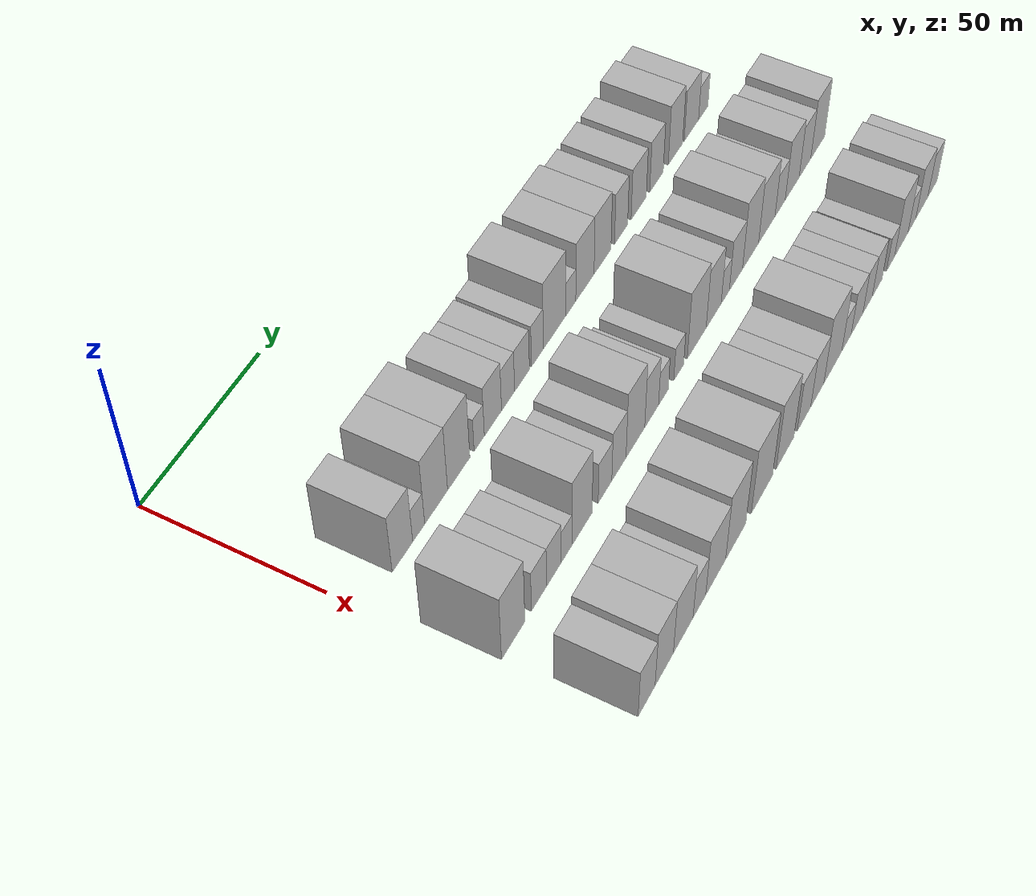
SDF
<sdf version="1.6">
 <world name="default">
  <model name="building_40">
   <static>1</static>
   <pose>50.0000 15.7462 0 0.000000 0.000000 0.000000</pose>
   <link name="link">
    <pose>0 0 10.50 0 0 0</pose>
    <collision name="collision"><geometry><box><size>20.0000 9.0283 21.0000</size></box></geometry></collision>
    <visual name="visual">
     <cast_shadows>0</cast_shadows>
     <geometry><box><size>20.0000 9.0283 21.0000</size></box></geometry>
     <material>
      <script>
       <uri>model://HANNAS_wall/materials/scripts</uri>
       <uri>model://HANNAS_wall/materials/textures</uri>
       <name>vrc/HANNAS_wall</name>
      </script>
     </material>
    </visual>
   </link>
  </model>
  <model name="building_41">
   <static>1</static>
   <pose>50.0000 22.9326 0 0.000000 0.000000 0.000000</pose>
   <link name="link">
    <pose>0 0 6.00 0 0 0</pose>
    <collision name="collision"><geometry><box><size>20.0000 5.3446 12.0000</size></box></geometry></collision>
    <visual name="visual">
     <cast_shadows>0</cast_shadows>
     <geometry><box><size>20.0000 5.3446 12.0000</size></box></geometry>
     <material>
      <script>
       <uri>model://HANNAS_wall/materials/scripts</uri>
       <uri>model://HANNAS_wall/materials/textures</uri>
       <name>vrc/HANNAS_wall</name>
      </script>
     </material>
    </visual>
   </link>
  </model>
  <model name="building_42">
   <static>1</static>
   <pose>50.0000 30.8169 0 0.000000 0.000000 0.000000</pose>
   <link name="link">
    <pose>0 0 12.00 0 0 0</pose>
    <collision name="collision"><geometry><box><size>20.0000 10.4240 24.0000</size></box></geometry></collision>
    <visual name="visual">
     <cast_shadows>0</cast_shadows>
     <geometry><box><size>20.0000 10.4240 24.0000</size></box></geometry>
     <material>
      <script>
       <uri>model://HANNAS_wall/materials/scripts</uri>
       <uri>model://HANNAS_wall/materials/textures</uri>
       <name>vrc/HANNAS_wall</name>
      </script>
     </material>
    </visual>
   </link>
  </model>
  <model name="building_43">
   <static>1</static>
   <pose>50.0000 41.2329 0 0.000000 0.000000 0.000000</pose>
   <link name="link">
    <pose>0 0 12.00 0 0 0</pose>
    <collision name="collision"><geometry><box><size>20.0000 10.4081 24.0000</size></box></geometry></collision>
    <visual name="visual">
     <cast_shadows>0</cast_shadows>
     <geometry><box><size>20.0000 10.4081 24.0000</size></box></geometry>
     <material>
      <script>
       <uri>model://HANNAS_wall/materials/scripts</uri>
       <uri>model://HANNAS_wall/materials/textures</uri>
       <name>vrc/HANNAS_wall</name>
      </script>
     </material>
    </visual>
   </link>
  </model>
  <model name="building_44">
   <static>1</static>
   <pose>50.0000 50.8901 0 0.000000 0.000000 0.000000</pose>
   <link name="link">
    <pose>0 0 6.00 0 0 0</pose>
    <collision name="collision"><geometry><box><size>20.0000 4.9063 12.0000</size></box></geometry></collision>
    <visual name="visual">
     <cast_shadows>0</cast_shadows>
     <geometry><box><size>20.0000 4.9063 12.0000</size></box></geometry>
     <material>
      <script>
       <uri>model://HANNAS_wall/materials/scripts</uri>
       <uri>model://HANNAS_wall/materials/textures</uri>
       <name>vrc/HANNAS_wall</name>
      </script>
     </material>
    </visual>
   </link>
  </model>
  <model name="building_45">
   <static>1</static>
   <pose>50.0000 57.5141 0 0.000000 0.000000 0.000000</pose>
   <link name="link">
    <pose>0 0 9.00 0 0 0</pose>
    <collision name="collision"><geometry><box><size>20.0000 8.3417 18.0000</size></box></geometry></collision>
    <visual name="visual">
     <cast_shadows>0</cast_shadows>
     <geometry><box><size>20.0000 8.3417 18.0000</size></box></geometry>
     <material>
      <script>
       <uri>model://HANNAS_wall/materials/scripts</uri>
       <uri>model://HANNAS_wall/materials/textures</uri>
       <name>vrc/HANNAS_wall</name>
      </script>
     </material>
    </visual>
   </link>
  </model>
  <model name="building_46">
   <static>1</static>
   <pose>50.0000 64.9036 0 0.000000 0.000000 0.000000</pose>
   <link name="link">
    <pose>0 0 7.50 0 0 0</pose>
    <collision name="collision"><geometry><box><size>20.0000 6.4373 15.0000</size></box></geometry></collision>
    <visual name="visual">
     <cast_shadows>0</cast_shadows>
     <geometry><box><size>20.0000 6.4373 15.0000</size></box></geometry>
     <material>
      <script>
       <uri>model://HANNAS_wall/materials/scripts</uri>
       <uri>model://HANNAS_wall/materials/textures</uri>
       <name>vrc/HANNAS_wall</name>
      </script>
     </material>
    </visual>
   </link>
  </model>
  <model name="building_47">
   <static>1</static>
   <pose>50.0000 71.8408 0 0.000000 0.000000 0.000000</pose>
   <link name="link">
    <pose>0 0 7.50 0 0 0</pose>
    <collision name="collision"><geometry><box><size>20.0000 7.4370 15.0000</size></box></geometry></collision>
    <visual name="visual">
     <cast_shadows>0</cast_shadows>
     <geometry><box><size>20.0000 7.4370 15.0000</size></box></geometry>
     <material>
      <script>
       <uri>model://HANNAS_wall/materials/scripts</uri>
       <uri>model://HANNAS_wall/materials/textures</uri>
       <name>vrc/HANNAS_wall</name>
      </script>
     </material>
    </visual>
   </link>
  </model>
  <model name="building_48">
   <static>1</static>
   <pose>50.0000 79.6074 0 0.000000 0.000000 0.000000</pose>
   <link name="link">
    <pose>0 0 7.50 0 0 0</pose>
    <collision name="collision"><geometry><box><size>20.0000 6.0962 15.0000</size></box></geometry></collision>
    <visual name="visual">
     <cast_shadows>0</cast_shadows>
     <geometry><box><size>20.0000 6.0962 15.0000</size></box></geometry>
     <material>
      <script>
       <uri>model://HANNAS_wall/materials/scripts</uri>
       <uri>model://HANNAS_wall/materials/textures</uri>
       <name>vrc/HANNAS_wall</name>
      </script>
     </material>
    </visual>
   </link>
  </model>
  <model name="building_49">
   <static>1</static>
   <pose>50.0000 88.5167 0 0.000000 0.000000 0.000000</pose>
   <link name="link">
    <pose>0 0 12.00 0 0 0</pose>
    <collision name="collision"><geometry><box><size>20.0000 11.7224 24.0000</size></box></geometry></collision>
    <visual name="visual">
     <cast_shadows>0</cast_shadows>
     <geometry><box><size>20.0000 11.7224 24.0000</size></box></geometry>
     <material>
      <script>
       <uri>model://HANNAS_wall/materials/scripts</uri>
       <uri>model://HANNAS_wall/materials/textures</uri>
       <name>vrc/HANNAS_wall</name>
      </script>
     </material>
    </visual>
   </link>
  </model>
  <model name="building_50">
   <static>1</static>
   <pose>50.0000 97.0144 0 0.000000 0.000000 0.000000</pose>
   <link name="link">
    <pose>0 0 6.00 0 0 0</pose>
    <collision name="collision"><geometry><box><size>20.0000 5.2729 12.0000</size></box></geometry></collision>
    <visual name="visual">
     <cast_shadows>0</cast_shadows>
     <geometry><box><size>20.0000 5.2729 12.0000</size></box></geometry>
     <material>
      <script>
       <uri>model://HANNAS_wall/materials/scripts</uri>
       <uri>model://HANNAS_wall/materials/textures</uri>
       <name>vrc/HANNAS_wall</name>
      </script>
     </material>
    </visual>
   </link>
  </model>
  <model name="building_51">
   <static>1</static>
   <pose>50.0000 104.5965 0 0.000000 0.000000 0.000000</pose>
   <link name="link">
    <pose>0 0 10.50 0 0 0</pose>
    <collision name="collision"><geometry><box><size>20.0000 9.8914 21.0000</size></box></geometry></collision>
    <visual name="visual">
     <cast_shadows>0</cast_shadows>
     <geometry><box><size>20.0000 9.8914 21.0000</size></box></geometry>
     <material>
      <script>
       <uri>model://HANNAS_wall/materials/scripts</uri>
       <uri>model://HANNAS_wall/materials/textures</uri>
       <name>vrc/HANNAS_wall</name>
      </script>
     </material>
    </visual>
   </link>
  </model>
  <model name="building_52">
   <static>1</static>
   <pose>50.0000 114.2003 0 0.000000 0.000000 0.000000</pose>
   <link name="link">
    <pose>0 0 10.50 0 0 0</pose>
    <collision name="collision"><geometry><box><size>20.0000 9.3162 21.0000</size></box></geometry></collision>
    <visual name="visual">
     <cast_shadows>0</cast_shadows>
     <geometry><box><size>20.0000 9.3162 21.0000</size></box></geometry>
     <material>
      <script>
       <uri>model://HANNAS_wall/materials/scripts</uri>
       <uri>model://HANNAS_wall/materials/textures</uri>
       <name>vrc/HANNAS_wall</name>
      </script>
     </material>
    </visual>
   </link>
  </model>
  <model name="building_53">
   <static>1</static>
   <pose>50.0000 124.5587 0 0.000000 0.000000 0.000000</pose>
   <link name="link">
    <pose>0 0 9.00 0 0 0</pose>
    <collision name="collision"><geometry><box><size>20.0000 7.4005 18.0000</size></box></geometry></collision>
    <visual name="visual">
     <cast_shadows>0</cast_shadows>
     <geometry><box><size>20.0000 7.4005 18.0000</size></box></geometry>
     <material>
      <script>
       <uri>model://HANNAS_wall/materials/scripts</uri>
       <uri>model://HANNAS_wall/materials/textures</uri>
       <name>vrc/HANNAS_wall</name>
      </script>
     </material>
    </visual>
   </link>
  </model>
  <model name="building_54">
   <static>1</static>
   <pose>50.0000 134.6255 0 0.000000 0.000000 0.000000</pose>
   <link name="link">
    <pose>0 0 9.00 0 0 0</pose>
    <collision name="collision"><geometry><box><size>20.0000 8.7331 18.0000</size></box></geometry></collision>
    <visual name="visual">
     <cast_shadows>0</cast_shadows>
     <geometry><box><size>20.0000 8.7331 18.0000</size></box></geometry>
     <material>
      <script>
       <uri>model://HANNAS_wall/materials/scripts</uri>
       <uri>model://HANNAS_wall/materials/textures</uri>
       <name>vrc/HANNAS_wall</name>
      </script>
     </material>
    </visual>
   </link>
  </model>
  <model name="building_55">
   <static>1</static>
   <pose>50.0000 144.9846 0 0.000000 0.000000 0.000000</pose>
   <link name="link">
    <pose>0 0 9.00 0 0 0</pose>
    <collision name="collision"><geometry><box><size>20.0000 7.9852 18.0000</size></box></geometry></collision>
    <visual name="visual">
     <cast_shadows>0</cast_shadows>
     <geometry><box><size>20.0000 7.9852 18.0000</size></box></geometry>
     <material>
      <script>
       <uri>model://HANNAS_wall/materials/scripts</uri>
       <uri>model://HANNAS_wall/materials/textures</uri>
       <name>vrc/HANNAS_wall</name>
      </script>
     </material>
    </visual>
   </link>
  </model>
  <model name="building_56">
   <static>1</static>
   <pose>50.0000 156.3206 0 0.000000 0.000000 0.000000</pose>
   <link name="link">
    <pose>0 0 10.50 0 0 0</pose>
    <collision name="collision"><geometry><box><size>20.0000 8.6868 21.0000</size></box></geometry></collision>
    <visual name="visual">
     <cast_shadows>0</cast_shadows>
     <geometry><box><size>20.0000 8.6868 21.0000</size></box></geometry>
     <material>
      <script>
       <uri>model://HANNAS_wall/materials/scripts</uri>
       <uri>model://HANNAS_wall/materials/textures</uri>
       <name>vrc/HANNAS_wall</name>
      </script>
     </material>
    </visual>
   </link>
  </model>
  <model name="building_57">
   <static>1</static>
   <pose>50.0000 166.0911 0 0.000000 0.000000 0.000000</pose>
   <link name="link">
    <pose>0 0 9.00 0 0 0</pose>
    <collision name="collision"><geometry><box><size>20.0000 8.8542 18.0000</size></box></geometry></collision>
    <visual name="visual">
     <cast_shadows>0</cast_shadows>
     <geometry><box><size>20.0000 8.8542 18.0000</size></box></geometry>
     <material>
      <script>
       <uri>model://HANNAS_wall/materials/scripts</uri>
       <uri>model://HANNAS_wall/materials/textures</uri>
       <name>vrc/HANNAS_wall</name>
      </script>
     </material>
    </visual>
   </link>
  </model>
  <model name="building_58">
   <static>1</static>
   <pose>50.0000 173.4508 0 0.000000 0.000000 0.000000</pose>
   <link name="link">
    <pose>0 0 6.00 0 0 0</pose>
    <collision name="collision"><geometry><box><size>20.0000 5.8651 12.0000</size></box></geometry></collision>
    <visual name="visual">
     <cast_shadows>0</cast_shadows>
     <geometry><box><size>20.0000 5.8651 12.0000</size></box></geometry>
     <material>
      <script>
       <uri>model://HANNAS_wall/materials/scripts</uri>
       <uri>model://HANNAS_wall/materials/textures</uri>
       <name>vrc/HANNAS_wall</name>
      </script>
     </material>
    </visual>
   </link>
  </model>
  <model name="building_117">
   <static>1</static>
   <pose>82.0000 8.3578 0 0.000000 0.000000 0.000000</pose>
   <link name="link">
    <pose>0 0 12.00 0 0 0</pose>
    <collision name="collision"><geometry><box><size>20.0000 10.6101 24.0000</size></box></geometry></collision>
    <visual name="visual">
     <cast_shadows>0</cast_shadows>
     <geometry><box><size>20.0000 10.6101 24.0000</size></box></geometry>
     <material>
      <script>
       <uri>model://HANNAS_wall/materials/scripts</uri>
       <uri>model://HANNAS_wall/materials/textures</uri>
       <name>vrc/HANNAS_wall</name>
      </script>
     </material>
    </visual>
   </link>
  </model>
  <model name="building_118">
   <static>1</static>
   <pose>82.0000 20.1882 0 0.000000 0.000000 0.000000</pose>
   <link name="link">
    <pose>0 0 7.50 0 0 0</pose>
    <collision name="collision"><geometry><box><size>20.0000 7.0508 15.0000</size></box></geometry></collision>
    <visual name="visual">
     <cast_shadows>0</cast_shadows>
     <geometry><box><size>20.0000 7.0508 15.0000</size></box></geometry>
     <material>
      <script>
       <uri>model://HANNAS_wall/materials/scripts</uri>
       <uri>model://HANNAS_wall/materials/textures</uri>
       <name>vrc/HANNAS_wall</name>
      </script>
     </material>
    </visual>
   </link>
  </model>
  <model name="building_119">
   <static>1</static>
   <pose>82.0000 27.2207 0 0.000000 0.000000 0.000000</pose>
   <link name="link">
    <pose>0 0 7.50 0 0 0</pose>
    <collision name="collision"><geometry><box><size>20.0000 7.0142 15.0000</size></box></geometry></collision>
    <visual name="visual">
     <cast_shadows>0</cast_shadows>
     <geometry><box><size>20.0000 7.0142 15.0000</size></box></geometry>
     <material>
      <script>
       <uri>model://HANNAS_wall/materials/scripts</uri>
       <uri>model://HANNAS_wall/materials/textures</uri>
       <name>vrc/HANNAS_wall</name>
      </script>
     </material>
    </visual>
   </link>
  </model>
  <model name="building_120">
   <static>1</static>
   <pose>82.0000 33.2956 0 0.000000 0.000000 0.000000</pose>
   <link name="link">
    <pose>0 0 6.00 0 0 0</pose>
    <collision name="collision"><geometry><box><size>20.0000 5.1355 12.0000</size></box></geometry></collision>
    <visual name="visual">
     <cast_shadows>0</cast_shadows>
     <geometry><box><size>20.0000 5.1355 12.0000</size></box></geometry>
     <material>
      <script>
       <uri>model://HANNAS_wall/materials/scripts</uri>
       <uri>model://HANNAS_wall/materials/textures</uri>
       <name>vrc/HANNAS_wall</name>
      </script>
     </material>
    </visual>
   </link>
  </model>
  <model name="building_121">
   <static>1</static>
   <pose>82.0000 40.8213 0 0.000000 0.000000 0.000000</pose>
   <link name="link">
    <pose>0 0 12.00 0 0 0</pose>
    <collision name="collision"><geometry><box><size>20.0000 9.9159 24.0000</size></box></geometry></collision>
    <visual name="visual">
     <cast_shadows>0</cast_shadows>
     <geometry><box><size>20.0000 9.9159 24.0000</size></box></geometry>
     <material>
      <script>
       <uri>model://HANNAS_wall/materials/scripts</uri>
       <uri>model://HANNAS_wall/materials/textures</uri>
       <name>vrc/HANNAS_wall</name>
      </script>
     </material>
    </visual>
   </link>
  </model>
  <model name="building_122">
   <static>1</static>
   <pose>82.0000 52.2259 0 0.000000 0.000000 0.000000</pose>
   <link name="link">
    <pose>0 0 7.50 0 0 0</pose>
    <collision name="collision"><geometry><box><size>20.0000 6.8932 15.0000</size></box></geometry></collision>
    <visual name="visual">
     <cast_shadows>0</cast_shadows>
     <geometry><box><size>20.0000 6.8932 15.0000</size></box></geometry>
     <material>
      <script>
       <uri>model://HANNAS_wall/materials/scripts</uri>
       <uri>model://HANNAS_wall/materials/textures</uri>
       <name>vrc/HANNAS_wall</name>
      </script>
     </material>
    </visual>
   </link>
  </model>
  <model name="building_123">
   <static>1</static>
   <pose>82.0000 59.3176 0 0.000000 0.000000 0.000000</pose>
   <link name="link">
    <pose>0 0 9.00 0 0 0</pose>
    <collision name="collision"><geometry><box><size>20.0000 7.2902 18.0000</size></box></geometry></collision>
    <visual name="visual">
     <cast_shadows>0</cast_shadows>
     <geometry><box><size>20.0000 7.2902 18.0000</size></box></geometry>
     <material>
      <script>
       <uri>model://HANNAS_wall/materials/scripts</uri>
       <uri>model://HANNAS_wall/materials/textures</uri>
       <name>vrc/HANNAS_wall</name>
      </script>
     </material>
    </visual>
   </link>
  </model>
  <model name="building_124">
   <static>1</static>
   <pose>82.0000 67.8774 0 0.000000 0.000000 0.000000</pose>
   <link name="link">
    <pose>0 0 12.00 0 0 0</pose>
    <collision name="collision"><geometry><box><size>20.0000 9.8295 24.0000</size></box></geometry></collision>
    <visual name="visual">
     <cast_shadows>0</cast_shadows>
     <geometry><box><size>20.0000 9.8295 24.0000</size></box></geometry>
     <material>
      <script>
       <uri>model://HANNAS_wall/materials/scripts</uri>
       <uri>model://HANNAS_wall/materials/textures</uri>
       <name>vrc/HANNAS_wall</name>
      </script>
     </material>
    </visual>
   </link>
  </model>
  <model name="building_125">
   <static>1</static>
   <pose>82.0000 76.4836 0 0.000000 0.000000 0.000000</pose>
   <link name="link">
    <pose>0 0 9.00 0 0 0</pose>
    <collision name="collision"><geometry><box><size>20.0000 7.3827 18.0000</size></box></geometry></collision>
    <visual name="visual">
     <cast_shadows>0</cast_shadows>
     <geometry><box><size>20.0000 7.3827 18.0000</size></box></geometry>
     <material>
      <script>
       <uri>model://HANNAS_wall/materials/scripts</uri>
       <uri>model://HANNAS_wall/materials/textures</uri>
       <name>vrc/HANNAS_wall</name>
      </script>
     </material>
    </visual>
   </link>
  </model>
  <model name="building_126">
   <static>1</static>
   <pose>82.0000 82.8270 0 0.000000 0.000000 0.000000</pose>
   <link name="link">
    <pose>0 0 6.00 0 0 0</pose>
    <collision name="collision"><geometry><box><size>20.0000 5.3042 12.0000</size></box></geometry></collision>
    <visual name="visual">
     <cast_shadows>0</cast_shadows>
     <geometry><box><size>20.0000 5.3042 12.0000</size></box></geometry>
     <material>
      <script>
       <uri>model://HANNAS_wall/materials/scripts</uri>
       <uri>model://HANNAS_wall/materials/textures</uri>
       <name>vrc/HANNAS_wall</name>
      </script>
     </material>
    </visual>
   </link>
  </model>
  <model name="building_127">
   <static>1</static>
   <pose>82.0000 91.2167 0 0.000000 0.000000 0.000000</pose>
   <link name="link">
    <pose>0 0 6.00 0 0 0</pose>
    <collision name="collision"><geometry><box><size>20.0000 5.4753 12.0000</size></box></geometry></collision>
    <visual name="visual">
     <cast_shadows>0</cast_shadows>
     <geometry><box><size>20.0000 5.4753 12.0000</size></box></geometry>
     <material>
      <script>
       <uri>model://HANNAS_wall/materials/scripts</uri>
       <uri>model://HANNAS_wall/materials/textures</uri>
       <name>vrc/HANNAS_wall</name>
      </script>
     </material>
    </visual>
   </link>
  </model>
  <model name="building_128">
   <static>1</static>
   <pose>82.0000 101.3046 0 0.000000 0.000000 0.000000</pose>
   <link name="link">
    <pose>0 0 12.00 0 0 0</pose>
    <collision name="collision"><geometry><box><size>20.0000 10.7004 24.0000</size></box></geometry></collision>
    <visual name="visual">
     <cast_shadows>0</cast_shadows>
     <geometry><box><size>20.0000 10.7004 24.0000</size></box></geometry>
     <material>
      <script>
       <uri>model://HANNAS_wall/materials/scripts</uri>
       <uri>model://HANNAS_wall/materials/textures</uri>
       <name>vrc/HANNAS_wall</name>
      </script>
     </material>
    </visual>
   </link>
  </model>
  <model name="building_129">
   <static>1</static>
   <pose>82.0000 111.0076 0 0.000000 0.000000 0.000000</pose>
   <link name="link">
    <pose>0 0 10.50 0 0 0</pose>
    <collision name="collision"><geometry><box><size>20.0000 8.7056 21.0000</size></box></geometry></collision>
    <visual name="visual">
     <cast_shadows>0</cast_shadows>
     <geometry><box><size>20.0000 8.7056 21.0000</size></box></geometry>
     <material>
      <script>
       <uri>model://HANNAS_wall/materials/scripts</uri>
       <uri>model://HANNAS_wall/materials/textures</uri>
       <name>vrc/HANNAS_wall</name>
      </script>
     </material>
    </visual>
   </link>
  </model>
  <model name="building_130">
   <static>1</static>
   <pose>82.0000 117.7645 0 0.000000 0.000000 0.000000</pose>
   <link name="link">
    <pose>0 0 6.00 0 0 0</pose>
    <collision name="collision"><geometry><box><size>20.0000 4.8082 12.0000</size></box></geometry></collision>
    <visual name="visual">
     <cast_shadows>0</cast_shadows>
     <geometry><box><size>20.0000 4.8082 12.0000</size></box></geometry>
     <material>
      <script>
       <uri>model://HANNAS_wall/materials/scripts</uri>
       <uri>model://HANNAS_wall/materials/textures</uri>
       <name>vrc/HANNAS_wall</name>
      </script>
     </material>
    </visual>
   </link>
  </model>
  <model name="building_131">
   <static>1</static>
   <pose>82.0000 124.0942 0 0.000000 0.000000 0.000000</pose>
   <link name="link">
    <pose>0 0 9.00 0 0 0</pose>
    <collision name="collision"><geometry><box><size>20.0000 7.8511 18.0000</size></box></geometry></collision>
    <visual name="visual">
     <cast_shadows>0</cast_shadows>
     <geometry><box><size>20.0000 7.8511 18.0000</size></box></geometry>
     <material>
      <script>
       <uri>model://HANNAS_wall/materials/scripts</uri>
       <uri>model://HANNAS_wall/materials/textures</uri>
       <name>vrc/HANNAS_wall</name>
      </script>
     </material>
    </visual>
   </link>
  </model>
  <model name="building_132">
   <static>1</static>
   <pose>82.0000 132.9100 0 0.000000 0.000000 0.000000</pose>
   <link name="link">
    <pose>0 0 12.00 0 0 0</pose>
    <collision name="collision"><geometry><box><size>20.0000 9.7806 24.0000</size></box></geometry></collision>
    <visual name="visual">
     <cast_shadows>0</cast_shadows>
     <geometry><box><size>20.0000 9.7806 24.0000</size></box></geometry>
     <material>
      <script>
       <uri>model://HANNAS_wall/materials/scripts</uri>
       <uri>model://HANNAS_wall/materials/textures</uri>
       <name>vrc/HANNAS_wall</name>
      </script>
     </material>
    </visual>
   </link>
  </model>
  <model name="building_133">
   <static>1</static>
   <pose>82.0000 142.9093 0 0.000000 0.000000 0.000000</pose>
   <link name="link">
    <pose>0 0 10.50 0 0 0</pose>
    <collision name="collision"><geometry><box><size>20.0000 10.2180 21.0000</size></box></geometry></collision>
    <visual name="visual">
     <cast_shadows>0</cast_shadows>
     <geometry><box><size>20.0000 10.2180 21.0000</size></box></geometry>
     <material>
      <script>
       <uri>model://HANNAS_wall/materials/scripts</uri>
       <uri>model://HANNAS_wall/materials/textures</uri>
       <name>vrc/HANNAS_wall</name>
      </script>
     </material>
    </visual>
   </link>
  </model>
  <model name="building_134">
   <static>1</static>
   <pose>82.0000 151.2704 0 0.000000 0.000000 0.000000</pose>
   <link name="link">
    <pose>0 0 7.50 0 0 0</pose>
    <collision name="collision"><geometry><box><size>20.0000 6.5040 15.0000</size></box></geometry></collision>
    <visual name="visual">
     <cast_shadows>0</cast_shadows>
     <geometry><box><size>20.0000 6.5040 15.0000</size></box></geometry>
     <material>
      <script>
       <uri>model://HANNAS_wall/materials/scripts</uri>
       <uri>model://HANNAS_wall/materials/textures</uri>
       <name>vrc/HANNAS_wall</name>
      </script>
     </material>
    </visual>
   </link>
  </model>
  <model name="building_135">
   <static>1</static>
   <pose>82.0000 158.9904 0 0.000000 0.000000 0.000000</pose>
   <link name="link">
    <pose>0 0 10.50 0 0 0</pose>
    <collision name="collision"><geometry><box><size>20.0000 8.9361 21.0000</size></box></geometry></collision>
    <visual name="visual">
     <cast_shadows>0</cast_shadows>
     <geometry><box><size>20.0000 8.9361 21.0000</size></box></geometry>
     <material>
      <script>
       <uri>model://HANNAS_wall/materials/scripts</uri>
       <uri>model://HANNAS_wall/materials/textures</uri>
       <name>vrc/HANNAS_wall</name>
      </script>
     </material>
    </visual>
   </link>
  </model>
  <model name="building_136">
   <static>1</static>
   <pose>82.0000 167.2765 0 0.000000 0.000000 0.000000</pose>
   <link name="link">
    <pose>0 0 9.00 0 0 0</pose>
    <collision name="collision"><geometry><box><size>20.0000 7.6362 18.0000</size></box></geometry></collision>
    <visual name="visual">
     <cast_shadows>0</cast_shadows>
     <geometry><box><size>20.0000 7.6362 18.0000</size></box></geometry>
     <material>
      <script>
       <uri>model://HANNAS_wall/materials/scripts</uri>
       <uri>model://HANNAS_wall/materials/textures</uri>
       <name>vrc/HANNAS_wall</name>
      </script>
     </material>
    </visual>
   </link>
  </model>
  <model name="building_137">
   <static>1</static>
   <pose>82.0000 175.7173 0 0.000000 0.000000 0.000000</pose>
   <link name="link">
    <pose>0 0 10.50 0 0 0</pose>
    <collision name="collision"><geometry><box><size>20.0000 9.2454 21.0000</size></box></geometry></collision>
    <visual name="visual">
     <cast_shadows>0</cast_shadows>
     <geometry><box><size>20.0000 9.2454 21.0000</size></box></geometry>
     <material>
      <script>
       <uri>model://HANNAS_wall/materials/scripts</uri>
       <uri>model://HANNAS_wall/materials/textures</uri>
       <name>vrc/HANNAS_wall</name>
      </script>
     </material>
    </visual>
   </link>
  </model>
  <model name="building_198">
   <static>1</static>
   <pose>114.0000 8.3817 0 0.000000 0.000000 0.000000</pose>
   <link name="link">
    <pose>0 0 9.00 0 0 0</pose>
    <collision name="collision"><geometry><box><size>20.0000 8.1725 18.0000</size></box></geometry></collision>
    <visual name="visual">
     <cast_shadows>0</cast_shadows>
     <geometry><box><size>20.0000 8.1725 18.0000</size></box></geometry>
     <material>
      <script>
       <uri>model://HANNAS_wall/materials/scripts</uri>
       <uri>model://HANNAS_wall/materials/textures</uri>
       <name>vrc/HANNAS_wall</name>
      </script>
     </material>
    </visual>
   </link>
  </model>
  <model name="building_199">
   <static>1</static>
   <pose>114.0000 16.9630 0 0.000000 0.000000 0.000000</pose>
   <link name="link">
    <pose>0 0 10.50 0 0 0</pose>
    <collision name="collision"><geometry><box><size>20.0000 8.9901 21.0000</size></box></geometry></collision>
    <visual name="visual">
     <cast_shadows>0</cast_shadows>
     <geometry><box><size>20.0000 8.9901 21.0000</size></box></geometry>
     <material>
      <script>
       <uri>model://HANNAS_wall/materials/scripts</uri>
       <uri>model://HANNAS_wall/materials/textures</uri>
       <name>vrc/HANNAS_wall</name>
      </script>
     </material>
    </visual>
   </link>
  </model>
  <model name="building_200">
   <static>1</static>
   <pose>114.0000 26.3979 0 0.000000 0.000000 0.000000</pose>
   <link name="link">
    <pose>0 0 10.50 0 0 0</pose>
    <collision name="collision"><geometry><box><size>20.0000 9.8796 21.0000</size></box></geometry></collision>
    <visual name="visual">
     <cast_shadows>0</cast_shadows>
     <geometry><box><size>20.0000 9.8796 21.0000</size></box></geometry>
     <material>
      <script>
       <uri>model://HANNAS_wall/materials/scripts</uri>
       <uri>model://HANNAS_wall/materials/textures</uri>
       <name>vrc/HANNAS_wall</name>
      </script>
     </material>
    </visual>
   </link>
  </model>
  <model name="building_201">
   <static>1</static>
   <pose>114.0000 34.6008 0 0.000000 0.000000 0.000000</pose>
   <link name="link">
    <pose>0 0 7.50 0 0 0</pose>
    <collision name="collision"><geometry><box><size>20.0000 6.5263 15.0000</size></box></geometry></collision>
    <visual name="visual">
     <cast_shadows>0</cast_shadows>
     <geometry><box><size>20.0000 6.5263 15.0000</size></box></geometry>
     <material>
      <script>
       <uri>model://HANNAS_wall/materials/scripts</uri>
       <uri>model://HANNAS_wall/materials/textures</uri>
       <name>vrc/HANNAS_wall</name>
      </script>
     </material>
    </visual>
   </link>
  </model>
  <model name="building_202">
   <static>1</static>
   <pose>114.0000 43.0897 0 0.000000 0.000000 0.000000</pose>
   <link name="link">
    <pose>0 0 10.50 0 0 0</pose>
    <collision name="collision"><geometry><box><size>20.0000 10.4516 21.0000</size></box></geometry></collision>
    <visual name="visual">
     <cast_shadows>0</cast_shadows>
     <geometry><box><size>20.0000 10.4516 21.0000</size></box></geometry>
     <material>
      <script>
       <uri>model://HANNAS_wall/materials/scripts</uri>
       <uri>model://HANNAS_wall/materials/textures</uri>
       <name>vrc/HANNAS_wall</name>
      </script>
     </material>
    </visual>
   </link>
  </model>
  <model name="building_203">
   <static>1</static>
   <pose>114.0000 53.7410 0 0.000000 0.000000 0.000000</pose>
   <link name="link">
    <pose>0 0 12.00 0 0 0</pose>
    <collision name="collision"><geometry><box><size>20.0000 10.8510 24.0000</size></box></geometry></collision>
    <visual name="visual">
     <cast_shadows>0</cast_shadows>
     <geometry><box><size>20.0000 10.8510 24.0000</size></box></geometry>
     <material>
      <script>
       <uri>model://HANNAS_wall/materials/scripts</uri>
       <uri>model://HANNAS_wall/materials/textures</uri>
       <name>vrc/HANNAS_wall</name>
      </script>
     </material>
    </visual>
   </link>
  </model>
  <model name="building_204">
   <static>1</static>
   <pose>114.0000 68.1231 0 0.000000 0.000000 0.000000</pose>
   <link name="link">
    <pose>0 0 12.00 0 0 0</pose>
    <collision name="collision"><geometry><box><size>20.0000 11.9131 24.0000</size></box></geometry></collision>
    <visual name="visual">
     <cast_shadows>0</cast_shadows>
     <geometry><box><size>20.0000 11.9131 24.0000</size></box></geometry>
     <material>
      <script>
       <uri>model://HANNAS_wall/materials/scripts</uri>
       <uri>model://HANNAS_wall/materials/textures</uri>
       <name>vrc/HANNAS_wall</name>
      </script>
     </material>
    </visual>
   </link>
  </model>
  <model name="building_205">
   <static>1</static>
   <pose>114.0000 81.1770 0 0.000000 0.000000 0.000000</pose>
   <link name="link">
    <pose>0 0 12.00 0 0 0</pose>
    <collision name="collision"><geometry><box><size>20.0000 10.1948 24.0000</size></box></geometry></collision>
    <visual name="visual">
     <cast_shadows>0</cast_shadows>
     <geometry><box><size>20.0000 10.1948 24.0000</size></box></geometry>
     <material>
      <script>
       <uri>model://HANNAS_wall/materials/scripts</uri>
       <uri>model://HANNAS_wall/materials/textures</uri>
       <name>vrc/HANNAS_wall</name>
      </script>
     </material>
    </visual>
   </link>
  </model>
  <model name="building_206">
   <static>1</static>
   <pose>114.0000 92.2564 0 0.000000 0.000000 0.000000</pose>
   <link name="link">
    <pose>0 0 9.00 0 0 0</pose>
    <collision name="collision"><geometry><box><size>20.0000 7.9638 18.0000</size></box></geometry></collision>
    <visual name="visual">
     <cast_shadows>0</cast_shadows>
     <geometry><box><size>20.0000 7.9638 18.0000</size></box></geometry>
     <material>
      <script>
       <uri>model://HANNAS_wall/materials/scripts</uri>
       <uri>model://HANNAS_wall/materials/textures</uri>
       <name>vrc/HANNAS_wall</name>
      </script>
     </material>
    </visual>
   </link>
  </model>
  <model name="building_207">
   <static>1</static>
   <pose>114.0000 100.1665 0 0.000000 0.000000 0.000000</pose>
   <link name="link">
    <pose>0 0 9.00 0 0 0</pose>
    <collision name="collision"><geometry><box><size>20.0000 7.8565 18.0000</size></box></geometry></collision>
    <visual name="visual">
     <cast_shadows>0</cast_shadows>
     <geometry><box><size>20.0000 7.8565 18.0000</size></box></geometry>
     <material>
      <script>
       <uri>model://HANNAS_wall/materials/scripts</uri>
       <uri>model://HANNAS_wall/materials/textures</uri>
       <name>vrc/HANNAS_wall</name>
      </script>
     </material>
    </visual>
   </link>
  </model>
  <model name="building_208">
   <static>1</static>
   <pose>114.0000 109.6345 0 0.000000 0.000000 0.000000</pose>
   <link name="link">
    <pose>0 0 12.00 0 0 0</pose>
    <collision name="collision"><geometry><box><size>20.0000 11.0796 24.0000</size></box></geometry></collision>
    <visual name="visual">
     <cast_shadows>0</cast_shadows>
     <geometry><box><size>20.0000 11.0796 24.0000</size></box></geometry>
     <material>
      <script>
       <uri>model://HANNAS_wall/materials/scripts</uri>
       <uri>model://HANNAS_wall/materials/textures</uri>
       <name>vrc/HANNAS_wall</name>
      </script>
     </material>
    </visual>
   </link>
  </model>
  <model name="building_209">
   <static>1</static>
   <pose>114.0000 118.1137 0 0.000000 0.000000 0.000000</pose>
   <link name="link">
    <pose>0 0 6.00 0 0 0</pose>
    <collision name="collision"><geometry><box><size>20.0000 5.8786 12.0000</size></box></geometry></collision>
    <visual name="visual">
     <cast_shadows>0</cast_shadows>
     <geometry><box><size>20.0000 5.8786 12.0000</size></box></geometry>
     <material>
      <script>
       <uri>model://HANNAS_wall/materials/scripts</uri>
       <uri>model://HANNAS_wall/materials/textures</uri>
       <name>vrc/HANNAS_wall</name>
      </script>
     </material>
    </visual>
   </link>
  </model>
  <model name="building_210">
   <static>1</static>
   <pose>114.0000 124.7917 0 0.000000 0.000000 0.000000</pose>
   <link name="link">
    <pose>0 0 7.50 0 0 0</pose>
    <collision name="collision"><geometry><box><size>20.0000 7.4774 15.0000</size></box></geometry></collision>
    <visual name="visual">
     <cast_shadows>0</cast_shadows>
     <geometry><box><size>20.0000 7.4774 15.0000</size></box></geometry>
     <material>
      <script>
       <uri>model://HANNAS_wall/materials/scripts</uri>
       <uri>model://HANNAS_wall/materials/textures</uri>
       <name>vrc/HANNAS_wall</name>
      </script>
     </material>
    </visual>
   </link>
  </model>
  <model name="building_211">
   <static>1</static>
   <pose>114.0000 131.5396 0 0.000000 0.000000 0.000000</pose>
   <link name="link">
    <pose>0 0 7.50 0 0 0</pose>
    <collision name="collision"><geometry><box><size>20.0000 6.0184 15.0000</size></box></geometry></collision>
    <visual name="visual">
     <cast_shadows>0</cast_shadows>
     <geometry><box><size>20.0000 6.0184 15.0000</size></box></geometry>
     <material>
      <script>
       <uri>model://HANNAS_wall/materials/scripts</uri>
       <uri>model://HANNAS_wall/materials/textures</uri>
       <name>vrc/HANNAS_wall</name>
      </script>
     </material>
    </visual>
   </link>
  </model>
  <model name="building_212">
   <static>1</static>
   <pose>114.0000 137.7656 0 0.000000 0.000000 0.000000</pose>
   <link name="link">
    <pose>0 0 7.50 0 0 0</pose>
    <collision name="collision"><geometry><box><size>20.0000 6.4336 15.0000</size></box></geometry></collision>
    <visual name="visual">
     <cast_shadows>0</cast_shadows>
     <geometry><box><size>20.0000 6.4336 15.0000</size></box></geometry>
     <material>
      <script>
       <uri>model://HANNAS_wall/materials/scripts</uri>
       <uri>model://HANNAS_wall/materials/textures</uri>
       <name>vrc/HANNAS_wall</name>
      </script>
     </material>
    </visual>
   </link>
  </model>
  <model name="building_213">
   <static>1</static>
   <pose>114.0000 146.6486 0 0.000000 0.000000 0.000000</pose>
   <link name="link">
    <pose>0 0 6.00 0 0 0</pose>
    <collision name="collision"><geometry><box><size>20.0000 5.3324 12.0000</size></box></geometry></collision>
    <visual name="visual">
     <cast_shadows>0</cast_shadows>
     <geometry><box><size>20.0000 5.3324 12.0000</size></box></geometry>
     <material>
      <script>
       <uri>model://HANNAS_wall/materials/scripts</uri>
       <uri>model://HANNAS_wall/materials/textures</uri>
       <name>vrc/HANNAS_wall</name>
      </script>
     </material>
    </visual>
   </link>
  </model>
  <model name="building_214">
   <static>1</static>
   <pose>114.0000 153.9464 0 0.000000 0.000000 0.000000</pose>
   <link name="link">
    <pose>0 0 10.50 0 0 0</pose>
    <collision name="collision"><geometry><box><size>20.0000 9.2631 21.0000</size></box></geometry></collision>
    <visual name="visual">
     <cast_shadows>0</cast_shadows>
     <geometry><box><size>20.0000 9.2631 21.0000</size></box></geometry>
     <material>
      <script>
       <uri>model://HANNAS_wall/materials/scripts</uri>
       <uri>model://HANNAS_wall/materials/textures</uri>
       <name>vrc/HANNAS_wall</name>
      </script>
     </material>
    </visual>
   </link>
  </model>
  <model name="building_215">
   <static>1</static>
   <pose>114.0000 161.2258 0 0.000000 0.000000 0.000000</pose>
   <link name="link">
    <pose>0 0 6.00 0 0 0</pose>
    <collision name="collision"><geometry><box><size>20.0000 5.2956 12.0000</size></box></geometry></collision>
    <visual name="visual">
     <cast_shadows>0</cast_shadows>
     <geometry><box><size>20.0000 5.2956 12.0000</size></box></geometry>
     <material>
      <script>
       <uri>model://HANNAS_wall/materials/scripts</uri>
       <uri>model://HANNAS_wall/materials/textures</uri>
       <name>vrc/HANNAS_wall</name>
      </script>
     </material>
    </visual>
   </link>
  </model>
  <model name="building_216">
   <static>1</static>
   <pose>114.0000 168.1050 0 0.000000 0.000000 0.000000</pose>
   <link name="link">
    <pose>0 0 9.00 0 0 0</pose>
    <collision name="collision"><geometry><box><size>20.0000 8.4629 18.0000</size></box></geometry></collision>
    <visual name="visual">
     <cast_shadows>0</cast_shadows>
     <geometry><box><size>20.0000 8.4629 18.0000</size></box></geometry>
     <material>
      <script>
       <uri>model://HANNAS_wall/materials/scripts</uri>
       <uri>model://HANNAS_wall/materials/textures</uri>
       <name>vrc/HANNAS_wall</name>
      </script>
     </material>
    </visual>
   </link>
  </model>
  <model name="building_217">
   <static>1</static>
   <pose>114.0000 175.6568 0 0.000000 0.000000 0.000000</pose>
   <link name="link">
    <pose>0 0 7.50 0 0 0</pose>
    <collision name="collision"><geometry><box><size>20.0000 6.6406 15.0000</size></box></geometry></collision>
    <visual name="visual">
     <cast_shadows>0</cast_shadows>
     <geometry><box><size>20.0000 6.6406 15.0000</size></box></geometry>
     <material>
      <script>
       <uri>model://HANNAS_wall/materials/scripts</uri>
       <uri>model://HANNAS_wall/materials/textures</uri>
       <name>vrc/HANNAS_wall</name>
      </script>
     </material>
    </visual>
   </link>
  </model>
 </world>
</sdf>
